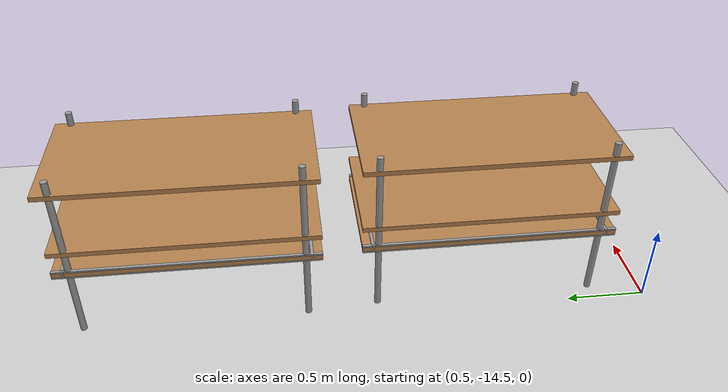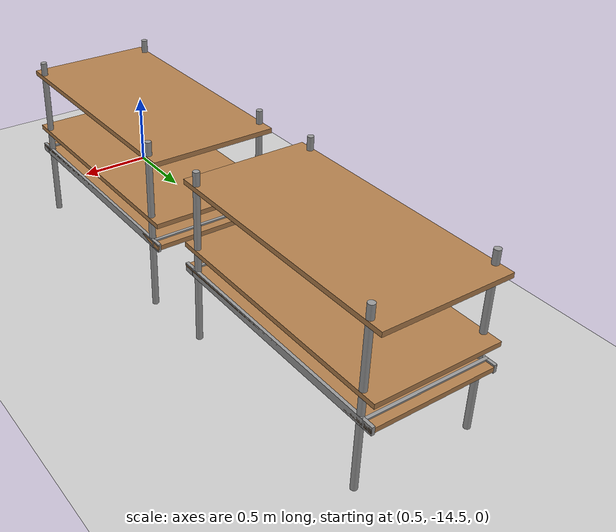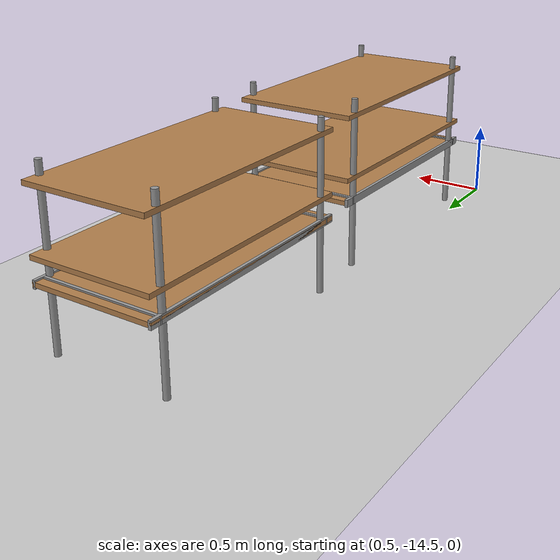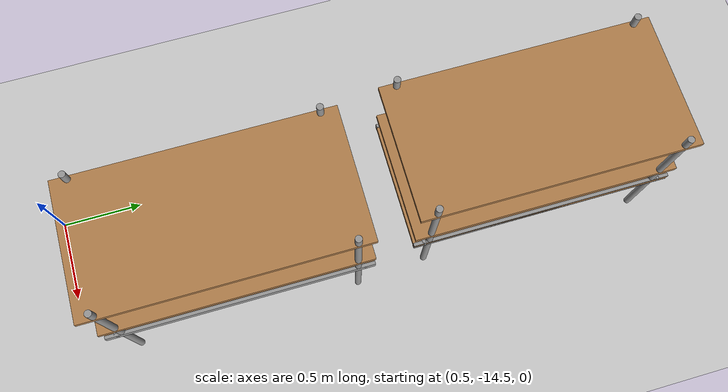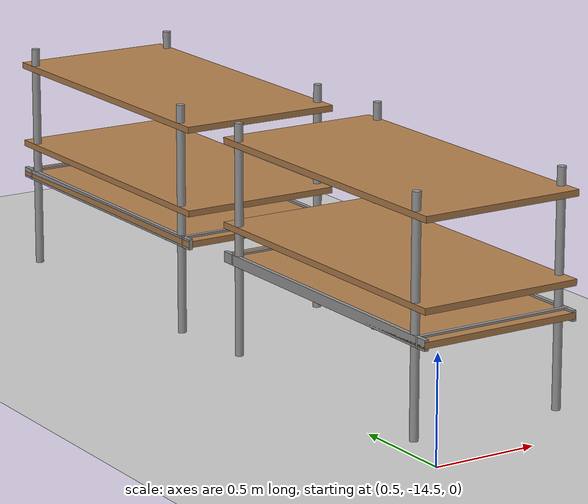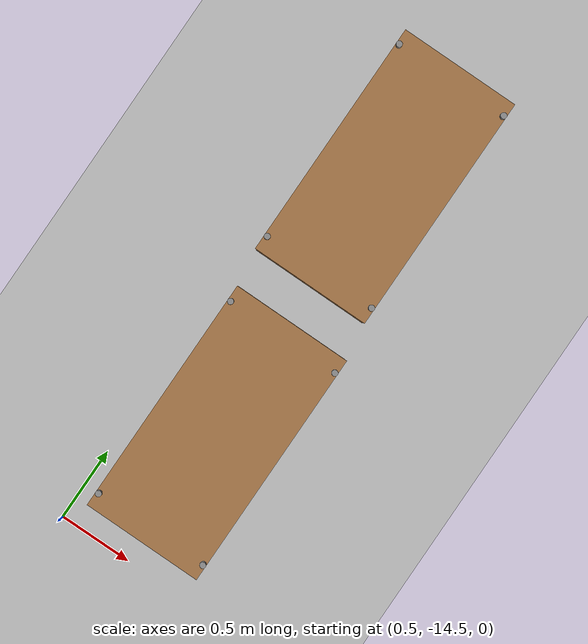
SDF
<sdf version="1.7">
 <world name="default">
  <model name="ground_plane">
   <static>1</static>
   <link name="link">
    <collision name="collision">
     <geometry><plane><normal>0 0 1</normal><size>100 100</size></plane></geometry>
     <surface>
      <contact><collide_bitmask>65535</collide_bitmask></contact>
      <friction><ode><mu>100</mu><mu2>50</mu2></ode></friction>
     </surface>
    </collision>
    <visual name="visual">
     <cast_shadows>0</cast_shadows>
     <geometry><plane><normal>0 0 1</normal><size>100 100</size></plane></geometry>
     <material>
      <script><uri>file://media/materials/scripts/gazebo.material</uri><name>Gazebo/Grey</name></script>
     </material>
    </visual>
   </link>
  </model>
  <model name="pallet_set0_clone_1_0">
   <link name="warehouse_pallet::warehouse_pallet::link">
    <pose>0 0 0 0 -0 1.57</pose>
    <inertial>
     <inertia>
      <ixx>0.0267042</ixx>
      <ixy>0</ixy>
      <ixz>0</ixz>
      <iyy>0.0937875</iyy>
      <iyz>0</iyz>
      <izz>0.120417</izz>
     </inertia>
     <mass>0.1</mass>
    </inertial>
    <visual name="back_right_leg">
     <pose>-0.7 -0.38 0.5 0 -0 0</pose>
     <geometry><cylinder><radius>0.02</radius><length>1.2</length></cylinder></geometry>
     <material>
      <script><uri>file://media/materials/scripts/gazebo.material</uri><name>Gazebo/Grey</name></script>
      <shader type="pixel"><normal_map>__default__</normal_map></shader>
      <ambient>0.3 0.3 0.3 1</ambient>
      <diffuse>0.7 0.7 0.7 1</diffuse>
      <specular>0.01 0.01 0.01 1</specular>
      <emissive>0 0 0 1</emissive>
     </material>
    </visual>
    <visual name="front_right_leg">
     <pose>0.7 -0.38 0.5 0 -0 0</pose>
     <geometry><cylinder><radius>0.02</radius><length>1.2</length></cylinder></geometry>
     <material>
      <script><uri>file://media/materials/scripts/gazebo.material</uri><name>Gazebo/Grey</name></script>
      <shader type="pixel"><normal_map>__default__</normal_map></shader>
      <ambient>0.3 0.3 0.3 1</ambient>
      <diffuse>0.7 0.7 0.7 1</diffuse>
      <specular>0.01 0.01 0.01 1</specular>
      <emissive>0 0 0 1</emissive>
     </material>
    </visual>
    <visual name="holding1_visual">
     <pose>0 0.39 0.45 0 -0 0</pose>
     <geometry><box><size>1.6 0.02 0.05</size></box></geometry>
     <material>
      <script><uri>file://media/materials/scripts/gazebo.material</uri><name>Gazebo/Grey</name></script>
      <shader type="pixel"><normal_map>__default__</normal_map></shader>
      <ambient>0.3 0.3 0.3 1</ambient>
      <diffuse>0.7 0.7 0.7 1</diffuse>
      <specular>0.01 0.01 0.01 1</specular>
      <emissive>0 0 0 1</emissive>
     </material>
    </visual>
    <visual name="front_left_leg">
     <pose>0.7 0.38 0.5 0 -0 0</pose>
     <geometry><cylinder><radius>0.02</radius><length>1.2</length></cylinder></geometry>
     <material>
      <script><uri>file://media/materials/scripts/gazebo.material</uri><name>Gazebo/Grey</name></script>
      <shader type="pixel"><normal_map>__default__</normal_map></shader>
      <ambient>0.3 0.3 0.3 1</ambient>
      <diffuse>0.7 0.7 0.7 1</diffuse>
      <specular>0.01 0.01 0.01 1</specular>
      <emissive>0 0 0 1</emissive>
     </material>
    </visual>
    <visual name="back_left_leg">
     <pose>-0.7 0.38 0.5 0 -0 0</pose>
     <geometry><cylinder><radius>0.02</radius><length>1.2</length></cylinder></geometry>
     <material>
      <script><uri>file://media/materials/scripts/gazebo.material</uri><name>Gazebo/Grey</name></script>
      <shader type="pixel"><normal_map>__default__</normal_map></shader>
      <ambient>0.3 0.3 0.3 1</ambient>
      <diffuse>0.7 0.7 0.7 1</diffuse>
      <specular>0.01 0.01 0.01 1</specular>
      <emissive>0 0 0 1</emissive>
     </material>
    </visual>
    <visual name="visual1">
     <pose>0 0 0.45 0 -0 0</pose>
     <geometry><box><size>1.6 0.8 0.03</size></box></geometry>
     <material>
      <script><uri>file://media/materials/scripts/gazebo.material</uri><name>Gazebo/Wood</name></script>
      <shader type="pixel"><normal_map>__default__</normal_map></shader>
      <ambient>1 1 1 1</ambient>
      <diffuse>1 1 1 1</diffuse>
      <specular>0.2 0.2 0.2 1</specular>
      <emissive>0 0 0 1</emissive>
     </material>
    </visual>
    <visual name="holding2_visual">
     <pose>0 -0.39 0.45 0 -0 0</pose>
     <geometry><box><size>1.6 0.02 0.05</size></box></geometry>
     <material>
      <script><uri>file://media/materials/scripts/gazebo.material</uri><name>Gazebo/Grey</name></script>
      <shader type="pixel"><normal_map>__default__</normal_map></shader>
      <ambient>0.3 0.3 0.3 1</ambient>
      <diffuse>0.7 0.7 0.7 1</diffuse>
      <specular>0.01 0.01 0.01 1</specular>
      <emissive>0 0 0 1</emissive>
     </material>
    </visual>
    <visual name="holding3_visual">
     <pose>0.735 0 0.45 0 -0 1.57</pose>
     <geometry><box><size>0.8 0.02 0.05</size></box></geometry>
     <material>
      <script><uri>file://media/materials/scripts/gazebo.material</uri><name>Gazebo/Grey</name></script>
      <shader type="pixel"><normal_map>__default__</normal_map></shader>
      <ambient>0.3 0.3 0.3 1</ambient>
      <diffuse>0.7 0.7 0.7 1</diffuse>
      <specular>0.01 0.01 0.01 1</specular>
      <emissive>0 0 0 1</emissive>
     </material>
    </visual>
    <visual name="holding4_visual">
     <pose>-0.735 0 0.45 0 -0 1.57</pose>
     <geometry><box><size>0.8 0.02 0.05</size></box></geometry>
     <material>
      <script><uri>file://media/materials/scripts/gazebo.material</uri><name>Gazebo/Grey</name></script>
      <shader type="pixel"><normal_map>__default__</normal_map></shader>
      <ambient>0.3 0.3 0.3 1</ambient>
      <diffuse>0.7 0.7 0.7 1</diffuse>
      <specular>0.01 0.01 0.01 1</specular>
      <emissive>0 0 0 1</emissive>
     </material>
    </visual>
    <visual name="visual2">
     <pose>0 0 0.6 0 -0 0</pose>
     <geometry><box><size>1.6 0.8 0.03</size></box></geometry>
     <material>
      <script><uri>file://media/materials/scripts/gazebo.material</uri><name>Gazebo/Wood</name></script>
      <shader type="pixel"><normal_map>__default__</normal_map></shader>
      <ambient>1 1 1 1</ambient>
      <diffuse>1 1 1 1</diffuse>
      <specular>0.2 0.2 0.2 1</specular>
      <emissive>0 0 0 1</emissive>
     </material>
    </visual>
    <visual name="visual3">
     <pose>0 0 1 0 -0 0</pose>
     <geometry><box><size>1.6 0.8 0.03</size></box></geometry>
     <material>
      <script><uri>file://media/materials/scripts/gazebo.material</uri><name>Gazebo/Wood</name></script>
      <shader type="pixel"><normal_map>__default__</normal_map></shader>
      <ambient>1 1 1 1</ambient>
      <diffuse>1 1 1 1</diffuse>
      <specular>0.2 0.2 0.2 1</specular>
      <emissive>0 0 0 1</emissive>
     </material>
    </visual>
    <collision name="surface1">
     <pose>0 0 0.45 0 -0 0</pose>
     <geometry><box><size>1.6 0.8 0.03</size></box></geometry>
     <surface>
      <friction>
       <ode><mu>20</mu><mu2>20</mu2><fdir1>0 0 0</fdir1><slip1>0</slip1><slip2>0</slip2></ode>
       <torsional>
        <coefficient>1</coefficient>
        <patch_radius>0</patch_radius>
        <surface_radius>0</surface_radius>
        <use_patch_radius>1</use_patch_radius>
        <ode><slip>0</slip></ode>
       </torsional>
      </friction>
      <bounce><restitution_coefficient>0</restitution_coefficient><threshold>1e+06</threshold></bounce>
      <contact>
       <collide_without_contact>0</collide_without_contact>
       <collide_without_contact_bitmask>1</collide_without_contact_bitmask>
       <collide_bitmask>1</collide_bitmask>
       <ode>
        <soft_cfm>0</soft_cfm>
        <soft_erp>0.2</soft_erp>
        <kp>1e+13</kp>
        <kd>1</kd>
        <max_vel>0.01</max_vel>
        <min_depth>0</min_depth>
       </ode>
       <bullet>
        <split_impulse>1</split_impulse>
        <split_impulse_penetration_threshold>-0.01</split_impulse_penetration_threshold>
        <soft_cfm>0</soft_cfm>
        <soft_erp>0.2</soft_erp>
        <kp>1e+13</kp>
        <kd>1</kd>
       </bullet>
      </contact>
     </surface>
    </collision>
    <collision name="holding1_collision">
     <pose>0 0.39 0.45 0 -0 0</pose>
     <geometry><box><size>1.6 0.02 0.05</size></box></geometry>
     <surface>
      <friction>
       <ode><mu>1e+09</mu><mu2>1e+09</mu2><fdir1>0 0 0</fdir1><slip1>0</slip1><slip2>0</slip2></ode>
       <torsional>
        <coefficient>1</coefficient>
        <patch_radius>0</patch_radius>
        <surface_radius>0</surface_radius>
        <use_patch_radius>1</use_patch_radius>
        <ode><slip>0</slip></ode>
       </torsional>
      </friction>
      <bounce><restitution_coefficient>0</restitution_coefficient><threshold>1e+06</threshold></bounce>
      <contact>
       <collide_without_contact>0</collide_without_contact>
       <collide_without_contact_bitmask>1</collide_without_contact_bitmask>
       <collide_bitmask>1</collide_bitmask>
       <ode>
        <soft_cfm>0</soft_cfm>
        <soft_erp>0.2</soft_erp>
        <kp>1e+13</kp>
        <kd>1</kd>
        <max_vel>0.01</max_vel>
        <min_depth>0</min_depth>
       </ode>
       <bullet>
        <split_impulse>1</split_impulse>
        <split_impulse_penetration_threshold>-0.01</split_impulse_penetration_threshold>
        <soft_cfm>0</soft_cfm>
        <soft_erp>0.2</soft_erp>
        <kp>1e+13</kp>
        <kd>1</kd>
       </bullet>
      </contact>
     </surface>
    </collision>
    <collision name="holding2_collision">
     <pose>0 -0.39 0.45 0 -0 0</pose>
     <geometry><box><size>1.6 0.02 0.05</size></box></geometry>
     <surface>
      <friction>
       <ode><mu>1e+09</mu><mu2>1e+09</mu2><fdir1>0 0 0</fdir1><slip1>0</slip1><slip2>0</slip2></ode>
       <torsional>
        <coefficient>1</coefficient>
        <patch_radius>0</patch_radius>
        <surface_radius>0</surface_radius>
        <use_patch_radius>1</use_patch_radius>
        <ode><slip>0</slip></ode>
       </torsional>
      </friction>
      <bounce><restitution_coefficient>0</restitution_coefficient><threshold>1e+06</threshold></bounce>
      <contact>
       <collide_without_contact>0</collide_without_contact>
       <collide_without_contact_bitmask>1</collide_without_contact_bitmask>
       <collide_bitmask>1</collide_bitmask>
       <ode>
        <soft_cfm>0</soft_cfm>
        <soft_erp>0.2</soft_erp>
        <kp>1e+13</kp>
        <kd>1</kd>
        <max_vel>0.01</max_vel>
        <min_depth>0</min_depth>
       </ode>
       <bullet>
        <split_impulse>1</split_impulse>
        <split_impulse_penetration_threshold>-0.01</split_impulse_penetration_threshold>
        <soft_cfm>0</soft_cfm>
        <soft_erp>0.2</soft_erp>
        <kp>1e+13</kp>
        <kd>1</kd>
       </bullet>
      </contact>
     </surface>
    </collision>
    <collision name="holding3_collision">
     <pose>0.735 0 0.45 0 -0 1.57</pose>
     <geometry><box><size>0.8 0.02 0.05</size></box></geometry>
     <surface>
      <friction>
       <ode><mu>1e+09</mu><mu2>1e+09</mu2><fdir1>0 0 0</fdir1><slip1>0</slip1><slip2>0</slip2></ode>
       <torsional>
        <coefficient>1</coefficient>
        <patch_radius>0</patch_radius>
        <surface_radius>0</surface_radius>
        <use_patch_radius>1</use_patch_radius>
        <ode><slip>0</slip></ode>
       </torsional>
      </friction>
      <bounce><restitution_coefficient>0</restitution_coefficient><threshold>1e+06</threshold></bounce>
      <contact>
       <collide_without_contact>0</collide_without_contact>
       <collide_without_contact_bitmask>1</collide_without_contact_bitmask>
       <collide_bitmask>1</collide_bitmask>
       <ode>
        <soft_cfm>0</soft_cfm>
        <soft_erp>0.2</soft_erp>
        <kp>1e+13</kp>
        <kd>1</kd>
        <max_vel>0.01</max_vel>
        <min_depth>0</min_depth>
       </ode>
       <bullet>
        <split_impulse>1</split_impulse>
        <split_impulse_penetration_threshold>-0.01</split_impulse_penetration_threshold>
        <soft_cfm>0</soft_cfm>
        <soft_erp>0.2</soft_erp>
        <kp>1e+13</kp>
        <kd>1</kd>
       </bullet>
      </contact>
     </surface>
    </collision>
    <collision name="surface3">
     <pose>0 0 1 0 -0 0</pose>
     <geometry><box><size>1.6 0.8 0.03</size></box></geometry>
     <surface>
      <friction>
       <ode><mu>2.5</mu><mu2>2.5</mu2><fdir1>0 0 0</fdir1><slip1>0</slip1><slip2>0</slip2></ode>
       <torsional>
        <coefficient>1</coefficient>
        <patch_radius>0</patch_radius>
        <surface_radius>0</surface_radius>
        <use_patch_radius>1</use_patch_radius>
        <ode><slip>0</slip></ode>
       </torsional>
      </friction>
      <bounce><restitution_coefficient>0</restitution_coefficient><threshold>1e+06</threshold></bounce>
      <contact>
       <collide_without_contact>0</collide_without_contact>
       <collide_without_contact_bitmask>1</collide_without_contact_bitmask>
       <collide_bitmask>1</collide_bitmask>
       <ode>
        <soft_cfm>0</soft_cfm>
        <soft_erp>0.2</soft_erp>
        <kp>1e+13</kp>
        <kd>1</kd>
        <max_vel>0.01</max_vel>
        <min_depth>0</min_depth>
       </ode>
       <bullet>
        <split_impulse>1</split_impulse>
        <split_impulse_penetration_threshold>-0.01</split_impulse_penetration_threshold>
        <soft_cfm>0</soft_cfm>
        <soft_erp>0.2</soft_erp>
        <kp>1e+13</kp>
        <kd>1</kd>
       </bullet>
      </contact>
     </surface>
    </collision>
    <collision name="holding4_collision">
     <pose>-0.735 0 0.45 0 -0 1.57</pose>
     <geometry><box><size>0.8 0.02 0.05</size></box></geometry>
     <surface>
      <friction>
       <ode><mu>1e+09</mu><mu2>1e+09</mu2><fdir1>0 0 0</fdir1><slip1>0</slip1><slip2>0</slip2></ode>
       <torsional>
        <coefficient>1</coefficient>
        <patch_radius>0</patch_radius>
        <surface_radius>0</surface_radius>
        <use_patch_radius>1</use_patch_radius>
        <ode><slip>0</slip></ode>
       </torsional>
      </friction>
      <bounce><restitution_coefficient>0</restitution_coefficient><threshold>1e+06</threshold></bounce>
      <contact>
       <collide_without_contact>0</collide_without_contact>
       <collide_without_contact_bitmask>1</collide_without_contact_bitmask>
       <collide_bitmask>1</collide_bitmask>
       <ode>
        <soft_cfm>0</soft_cfm>
        <soft_erp>0.2</soft_erp>
        <kp>1e+13</kp>
        <kd>1</kd>
        <max_vel>0.01</max_vel>
        <min_depth>0</min_depth>
       </ode>
       <bullet>
        <split_impulse>1</split_impulse>
        <split_impulse_penetration_threshold>-0.01</split_impulse_penetration_threshold>
        <soft_cfm>0</soft_cfm>
        <soft_erp>0.2</soft_erp>
        <kp>1e+13</kp>
        <kd>1</kd>
       </bullet>
      </contact>
     </surface>
    </collision>
    <collision name="surface2">
     <pose>0 0 0.6 0 -0 0</pose>
     <geometry><box><size>1.6 0.8 0.03</size></box></geometry>
     <surface>
      <friction>
       <ode><mu>2.5</mu><mu2>2.5</mu2><fdir1>0 0 0</fdir1><slip1>0</slip1><slip2>0</slip2></ode>
       <torsional>
        <coefficient>1</coefficient>
        <patch_radius>0</patch_radius>
        <surface_radius>0</surface_radius>
        <use_patch_radius>1</use_patch_radius>
        <ode><slip>0</slip></ode>
       </torsional>
      </friction>
      <bounce><restitution_coefficient>0</restitution_coefficient><threshold>1e+06</threshold></bounce>
      <contact>
       <collide_without_contact>0</collide_without_contact>
       <collide_without_contact_bitmask>1</collide_without_contact_bitmask>
       <collide_bitmask>1</collide_bitmask>
       <ode>
        <soft_cfm>0</soft_cfm>
        <soft_erp>0.2</soft_erp>
        <kp>1e+13</kp>
        <kd>1</kd>
        <max_vel>0.01</max_vel>
        <min_depth>0</min_depth>
       </ode>
       <bullet>
        <split_impulse>1</split_impulse>
        <split_impulse_penetration_threshold>-0.01</split_impulse_penetration_threshold>
        <soft_cfm>0</soft_cfm>
        <soft_erp>0.2</soft_erp>
        <kp>1e+13</kp>
        <kd>1</kd>
       </bullet>
      </contact>
     </surface>
    </collision>
    <collision name="front_right_leg">
     <pose>0.7 -0.38 0.5 0 -0 0</pose>
     <geometry><cylinder><radius>0.02</radius><length>1</length></cylinder></geometry>
     <surface>
      <friction>
       <ode><mu>0.1</mu><mu2>0.1</mu2><fdir1>0 0 0</fdir1><slip1>0</slip1><slip2>0</slip2></ode>
       <torsional>
        <coefficient>1</coefficient>
        <patch_radius>0</patch_radius>
        <surface_radius>0</surface_radius>
        <use_patch_radius>1</use_patch_radius>
        <ode><slip>0</slip></ode>
       </torsional>
      </friction>
      <bounce><restitution_coefficient>0</restitution_coefficient><threshold>1e+06</threshold></bounce>
      <contact>
       <collide_without_contact>0</collide_without_contact>
       <collide_without_contact_bitmask>1</collide_without_contact_bitmask>
       <collide_bitmask>1</collide_bitmask>
       <ode>
        <soft_cfm>0</soft_cfm>
        <soft_erp>0.2</soft_erp>
        <kp>1e+13</kp>
        <kd>1</kd>
        <max_vel>0.01</max_vel>
        <min_depth>0</min_depth>
       </ode>
       <bullet>
        <split_impulse>1</split_impulse>
        <split_impulse_penetration_threshold>-0.01</split_impulse_penetration_threshold>
        <soft_cfm>0</soft_cfm>
        <soft_erp>0.2</soft_erp>
        <kp>1e+13</kp>
        <kd>1</kd>
       </bullet>
      </contact>
     </surface>
    </collision>
    <collision name="back_right_leg">
     <pose>-0.7 -0.38 0.5 0 -0 0</pose>
     <geometry><cylinder><radius>0.02</radius><length>1.2</length></cylinder></geometry>
     <surface>
      <friction>
       <ode><mu>0.1</mu><mu2>0.1</mu2><fdir1>0 0 0</fdir1><slip1>0</slip1><slip2>0</slip2></ode>
       <torsional>
        <coefficient>1</coefficient>
        <patch_radius>0</patch_radius>
        <surface_radius>0</surface_radius>
        <use_patch_radius>1</use_patch_radius>
        <ode><slip>0</slip></ode>
       </torsional>
      </friction>
      <bounce><restitution_coefficient>0</restitution_coefficient><threshold>1e+06</threshold></bounce>
      <contact>
       <collide_without_contact>0</collide_without_contact>
       <collide_without_contact_bitmask>1</collide_without_contact_bitmask>
       <collide_bitmask>1</collide_bitmask>
       <ode>
        <soft_cfm>0</soft_cfm>
        <soft_erp>0.2</soft_erp>
        <kp>1e+13</kp>
        <kd>1</kd>
        <max_vel>0.01</max_vel>
        <min_depth>0</min_depth>
       </ode>
       <bullet>
        <split_impulse>1</split_impulse>
        <split_impulse_penetration_threshold>-0.01</split_impulse_penetration_threshold>
        <soft_cfm>0</soft_cfm>
        <soft_erp>0.2</soft_erp>
        <kp>1e+13</kp>
        <kd>1</kd>
       </bullet>
      </contact>
     </surface>
    </collision>
    <collision name="front_left_leg">
     <pose>0.7 0.38 0.5 0 -0 0</pose>
     <geometry><cylinder><radius>0.02</radius><length>1.2</length></cylinder></geometry>
     <surface>
      <friction>
       <ode><mu>0.1</mu><mu2>0.1</mu2><fdir1>0 0 0</fdir1><slip1>0</slip1><slip2>0</slip2></ode>
       <torsional>
        <coefficient>1</coefficient>
        <patch_radius>0</patch_radius>
        <surface_radius>0</surface_radius>
        <use_patch_radius>1</use_patch_radius>
        <ode><slip>0</slip></ode>
       </torsional>
      </friction>
      <bounce><restitution_coefficient>0</restitution_coefficient><threshold>1e+06</threshold></bounce>
      <contact>
       <collide_without_contact>0</collide_without_contact>
       <collide_without_contact_bitmask>1</collide_without_contact_bitmask>
       <collide_bitmask>1</collide_bitmask>
       <ode>
        <soft_cfm>0</soft_cfm>
        <soft_erp>0.2</soft_erp>
        <kp>1e+13</kp>
        <kd>1</kd>
        <max_vel>0.01</max_vel>
        <min_depth>0</min_depth>
       </ode>
       <bullet>
        <split_impulse>1</split_impulse>
        <split_impulse_penetration_threshold>-0.01</split_impulse_penetration_threshold>
        <soft_cfm>0</soft_cfm>
        <soft_erp>0.2</soft_erp>
        <kp>1e+13</kp>
        <kd>1</kd>
       </bullet>
      </contact>
     </surface>
    </collision>
    <collision name="back_left_leg">
     <pose>-0.7 0.38 0.5 0 -0 0</pose>
     <geometry><cylinder><radius>0.02</radius><length>1.2</length></cylinder></geometry>
     <surface>
      <friction>
       <ode><mu>0.1</mu><mu2>0.1</mu2><fdir1>0 0 0</fdir1><slip1>0</slip1><slip2>0</slip2></ode>
       <torsional>
        <coefficient>1</coefficient>
        <patch_radius>0</patch_radius>
        <surface_radius>0</surface_radius>
        <use_patch_radius>1</use_patch_radius>
        <ode><slip>0</slip></ode>
       </torsional>
      </friction>
      <bounce><restitution_coefficient>0</restitution_coefficient><threshold>1e+06</threshold></bounce>
      <contact>
       <collide_without_contact>0</collide_without_contact>
       <collide_without_contact_bitmask>1</collide_without_contact_bitmask>
       <collide_bitmask>1</collide_bitmask>
       <ode>
        <soft_cfm>0</soft_cfm>
        <soft_erp>0.2</soft_erp>
        <kp>1e+13</kp>
        <kd>1</kd>
        <max_vel>0.01</max_vel>
        <min_depth>0</min_depth>
       </ode>
       <bullet>
        <split_impulse>1</split_impulse>
        <split_impulse_penetration_threshold>-0.01</split_impulse_penetration_threshold>
        <soft_cfm>0</soft_cfm>
        <soft_erp>0.2</soft_erp>
        <kp>1e+13</kp>
        <kd>1</kd>
       </bullet>
      </contact>
     </surface>
    </collision>
   </link>
   <static>1</static>
   <pose>0.998437 -13.469 0 0 -0 0</pose>
  </model>
  <model name="pallet_set0_clone_1_1">
   <link name="warehouse_pallet::warehouse_pallet::link">
    <pose>0 0 0 0 -0 1.57</pose>
    <inertial>
     <inertia>
      <ixx>0.0267042</ixx>
      <ixy>0</ixy>
      <ixz>0</ixz>
      <iyy>0.0937875</iyy>
      <iyz>0</iyz>
      <izz>0.120417</izz>
     </inertia>
     <mass>0.1</mass>
    </inertial>
    <visual name="back_right_leg">
     <pose>-0.7 -0.38 0.5 0 -0 0</pose>
     <geometry><cylinder><radius>0.02</radius><length>1.2</length></cylinder></geometry>
     <material>
      <script><uri>file://media/materials/scripts/gazebo.material</uri><name>Gazebo/Grey</name></script>
      <shader type="pixel"><normal_map>__default__</normal_map></shader>
      <ambient>0.3 0.3 0.3 1</ambient>
      <diffuse>0.7 0.7 0.7 1</diffuse>
      <specular>0.01 0.01 0.01 1</specular>
      <emissive>0 0 0 1</emissive>
     </material>
    </visual>
    <visual name="front_right_leg">
     <pose>0.7 -0.38 0.5 0 -0 0</pose>
     <geometry><cylinder><radius>0.02</radius><length>1.2</length></cylinder></geometry>
     <material>
      <script><uri>file://media/materials/scripts/gazebo.material</uri><name>Gazebo/Grey</name></script>
      <shader type="pixel"><normal_map>__default__</normal_map></shader>
      <ambient>0.3 0.3 0.3 1</ambient>
      <diffuse>0.7 0.7 0.7 1</diffuse>
      <specular>0.01 0.01 0.01 1</specular>
      <emissive>0 0 0 1</emissive>
     </material>
    </visual>
    <visual name="holding1_visual">
     <pose>0 0.39 0.45 0 -0 0</pose>
     <geometry><box><size>1.6 0.02 0.05</size></box></geometry>
     <material>
      <script><uri>file://media/materials/scripts/gazebo.material</uri><name>Gazebo/Grey</name></script>
      <shader type="pixel"><normal_map>__default__</normal_map></shader>
      <ambient>0.3 0.3 0.3 1</ambient>
      <diffuse>0.7 0.7 0.7 1</diffuse>
      <specular>0.01 0.01 0.01 1</specular>
      <emissive>0 0 0 1</emissive>
     </material>
    </visual>
    <visual name="front_left_leg">
     <pose>0.7 0.38 0.5 0 -0 0</pose>
     <geometry><cylinder><radius>0.02</radius><length>1.2</length></cylinder></geometry>
     <material>
      <script><uri>file://media/materials/scripts/gazebo.material</uri><name>Gazebo/Grey</name></script>
      <shader type="pixel"><normal_map>__default__</normal_map></shader>
      <ambient>0.3 0.3 0.3 1</ambient>
      <diffuse>0.7 0.7 0.7 1</diffuse>
      <specular>0.01 0.01 0.01 1</specular>
      <emissive>0 0 0 1</emissive>
     </material>
    </visual>
    <visual name="back_left_leg">
     <pose>-0.7 0.38 0.5 0 -0 0</pose>
     <geometry><cylinder><radius>0.02</radius><length>1.2</length></cylinder></geometry>
     <material>
      <script><uri>file://media/materials/scripts/gazebo.material</uri><name>Gazebo/Grey</name></script>
      <shader type="pixel"><normal_map>__default__</normal_map></shader>
      <ambient>0.3 0.3 0.3 1</ambient>
      <diffuse>0.7 0.7 0.7 1</diffuse>
      <specular>0.01 0.01 0.01 1</specular>
      <emissive>0 0 0 1</emissive>
     </material>
    </visual>
    <visual name="visual1">
     <pose>0 0 0.45 0 -0 0</pose>
     <geometry><box><size>1.6 0.8 0.03</size></box></geometry>
     <material>
      <script><uri>file://media/materials/scripts/gazebo.material</uri><name>Gazebo/Wood</name></script>
      <shader type="pixel"><normal_map>__default__</normal_map></shader>
      <ambient>1 1 1 1</ambient>
      <diffuse>1 1 1 1</diffuse>
      <specular>0.2 0.2 0.2 1</specular>
      <emissive>0 0 0 1</emissive>
     </material>
    </visual>
    <visual name="holding2_visual">
     <pose>0 -0.39 0.45 0 -0 0</pose>
     <geometry><box><size>1.6 0.02 0.05</size></box></geometry>
     <material>
      <script><uri>file://media/materials/scripts/gazebo.material</uri><name>Gazebo/Grey</name></script>
      <shader type="pixel"><normal_map>__default__</normal_map></shader>
      <ambient>0.3 0.3 0.3 1</ambient>
      <diffuse>0.7 0.7 0.7 1</diffuse>
      <specular>0.01 0.01 0.01 1</specular>
      <emissive>0 0 0 1</emissive>
     </material>
    </visual>
    <visual name="holding3_visual">
     <pose>0.735 0 0.45 0 -0 1.57</pose>
     <geometry><box><size>0.8 0.02 0.05</size></box></geometry>
     <material>
      <script><uri>file://media/materials/scripts/gazebo.material</uri><name>Gazebo/Grey</name></script>
      <shader type="pixel"><normal_map>__default__</normal_map></shader>
      <ambient>0.3 0.3 0.3 1</ambient>
      <diffuse>0.7 0.7 0.7 1</diffuse>
      <specular>0.01 0.01 0.01 1</specular>
      <emissive>0 0 0 1</emissive>
     </material>
    </visual>
    <visual name="holding4_visual">
     <pose>-0.735 0 0.45 0 -0 1.57</pose>
     <geometry><box><size>0.8 0.02 0.05</size></box></geometry>
     <material>
      <script><uri>file://media/materials/scripts/gazebo.material</uri><name>Gazebo/Grey</name></script>
      <shader type="pixel"><normal_map>__default__</normal_map></shader>
      <ambient>0.3 0.3 0.3 1</ambient>
      <diffuse>0.7 0.7 0.7 1</diffuse>
      <specular>0.01 0.01 0.01 1</specular>
      <emissive>0 0 0 1</emissive>
     </material>
    </visual>
    <visual name="visual2">
     <pose>0 0 0.6 0 -0 0</pose>
     <geometry><box><size>1.6 0.8 0.03</size></box></geometry>
     <material>
      <script><uri>file://media/materials/scripts/gazebo.material</uri><name>Gazebo/Wood</name></script>
      <shader type="pixel"><normal_map>__default__</normal_map></shader>
      <ambient>1 1 1 1</ambient>
      <diffuse>1 1 1 1</diffuse>
      <specular>0.2 0.2 0.2 1</specular>
      <emissive>0 0 0 1</emissive>
     </material>
    </visual>
    <visual name="visual3">
     <pose>0 0 1 0 -0 0</pose>
     <geometry><box><size>1.6 0.8 0.03</size></box></geometry>
     <material>
      <script><uri>file://media/materials/scripts/gazebo.material</uri><name>Gazebo/Wood</name></script>
      <shader type="pixel"><normal_map>__default__</normal_map></shader>
      <ambient>1 1 1 1</ambient>
      <diffuse>1 1 1 1</diffuse>
      <specular>0.2 0.2 0.2 1</specular>
      <emissive>0 0 0 1</emissive>
     </material>
    </visual>
    <collision name="surface1">
     <pose>0 0 0.45 0 -0 0</pose>
     <geometry><box><size>1.6 0.8 0.03</size></box></geometry>
     <surface>
      <friction>
       <ode><mu>20</mu><mu2>20</mu2><fdir1>0 0 0</fdir1><slip1>0</slip1><slip2>0</slip2></ode>
       <torsional>
        <coefficient>1</coefficient>
        <patch_radius>0</patch_radius>
        <surface_radius>0</surface_radius>
        <use_patch_radius>1</use_patch_radius>
        <ode><slip>0</slip></ode>
       </torsional>
      </friction>
      <bounce><restitution_coefficient>0</restitution_coefficient><threshold>1e+06</threshold></bounce>
      <contact>
       <collide_without_contact>0</collide_without_contact>
       <collide_without_contact_bitmask>1</collide_without_contact_bitmask>
       <collide_bitmask>1</collide_bitmask>
       <ode>
        <soft_cfm>0</soft_cfm>
        <soft_erp>0.2</soft_erp>
        <kp>1e+13</kp>
        <kd>1</kd>
        <max_vel>0.01</max_vel>
        <min_depth>0</min_depth>
       </ode>
       <bullet>
        <split_impulse>1</split_impulse>
        <split_impulse_penetration_threshold>-0.01</split_impulse_penetration_threshold>
        <soft_cfm>0</soft_cfm>
        <soft_erp>0.2</soft_erp>
        <kp>1e+13</kp>
        <kd>1</kd>
       </bullet>
      </contact>
     </surface>
    </collision>
    <collision name="holding1_collision">
     <pose>0 0.39 0.45 0 -0 0</pose>
     <geometry><box><size>1.6 0.02 0.05</size></box></geometry>
     <surface>
      <friction>
       <ode><mu>1e+09</mu><mu2>1e+09</mu2><fdir1>0 0 0</fdir1><slip1>0</slip1><slip2>0</slip2></ode>
       <torsional>
        <coefficient>1</coefficient>
        <patch_radius>0</patch_radius>
        <surface_radius>0</surface_radius>
        <use_patch_radius>1</use_patch_radius>
        <ode><slip>0</slip></ode>
       </torsional>
      </friction>
      <bounce><restitution_coefficient>0</restitution_coefficient><threshold>1e+06</threshold></bounce>
      <contact>
       <collide_without_contact>0</collide_without_contact>
       <collide_without_contact_bitmask>1</collide_without_contact_bitmask>
       <collide_bitmask>1</collide_bitmask>
       <ode>
        <soft_cfm>0</soft_cfm>
        <soft_erp>0.2</soft_erp>
        <kp>1e+13</kp>
        <kd>1</kd>
        <max_vel>0.01</max_vel>
        <min_depth>0</min_depth>
       </ode>
       <bullet>
        <split_impulse>1</split_impulse>
        <split_impulse_penetration_threshold>-0.01</split_impulse_penetration_threshold>
        <soft_cfm>0</soft_cfm>
        <soft_erp>0.2</soft_erp>
        <kp>1e+13</kp>
        <kd>1</kd>
       </bullet>
      </contact>
     </surface>
    </collision>
    <collision name="holding2_collision">
     <pose>0 -0.39 0.45 0 -0 0</pose>
     <geometry><box><size>1.6 0.02 0.05</size></box></geometry>
     <surface>
      <friction>
       <ode><mu>1e+09</mu><mu2>1e+09</mu2><fdir1>0 0 0</fdir1><slip1>0</slip1><slip2>0</slip2></ode>
       <torsional>
        <coefficient>1</coefficient>
        <patch_radius>0</patch_radius>
        <surface_radius>0</surface_radius>
        <use_patch_radius>1</use_patch_radius>
        <ode><slip>0</slip></ode>
       </torsional>
      </friction>
      <bounce><restitution_coefficient>0</restitution_coefficient><threshold>1e+06</threshold></bounce>
      <contact>
       <collide_without_contact>0</collide_without_contact>
       <collide_without_contact_bitmask>1</collide_without_contact_bitmask>
       <collide_bitmask>1</collide_bitmask>
       <ode>
        <soft_cfm>0</soft_cfm>
        <soft_erp>0.2</soft_erp>
        <kp>1e+13</kp>
        <kd>1</kd>
        <max_vel>0.01</max_vel>
        <min_depth>0</min_depth>
       </ode>
       <bullet>
        <split_impulse>1</split_impulse>
        <split_impulse_penetration_threshold>-0.01</split_impulse_penetration_threshold>
        <soft_cfm>0</soft_cfm>
        <soft_erp>0.2</soft_erp>
        <kp>1e+13</kp>
        <kd>1</kd>
       </bullet>
      </contact>
     </surface>
    </collision>
    <collision name="holding3_collision">
     <pose>0.735 0 0.45 0 -0 1.57</pose>
     <geometry><box><size>0.8 0.02 0.05</size></box></geometry>
     <surface>
      <friction>
       <ode><mu>1e+09</mu><mu2>1e+09</mu2><fdir1>0 0 0</fdir1><slip1>0</slip1><slip2>0</slip2></ode>
       <torsional>
        <coefficient>1</coefficient>
        <patch_radius>0</patch_radius>
        <surface_radius>0</surface_radius>
        <use_patch_radius>1</use_patch_radius>
        <ode><slip>0</slip></ode>
       </torsional>
      </friction>
      <bounce><restitution_coefficient>0</restitution_coefficient><threshold>1e+06</threshold></bounce>
      <contact>
       <collide_without_contact>0</collide_without_contact>
       <collide_without_contact_bitmask>1</collide_without_contact_bitmask>
       <collide_bitmask>1</collide_bitmask>
       <ode>
        <soft_cfm>0</soft_cfm>
        <soft_erp>0.2</soft_erp>
        <kp>1e+13</kp>
        <kd>1</kd>
        <max_vel>0.01</max_vel>
        <min_depth>0</min_depth>
       </ode>
       <bullet>
        <split_impulse>1</split_impulse>
        <split_impulse_penetration_threshold>-0.01</split_impulse_penetration_threshold>
        <soft_cfm>0</soft_cfm>
        <soft_erp>0.2</soft_erp>
        <kp>1e+13</kp>
        <kd>1</kd>
       </bullet>
      </contact>
     </surface>
    </collision>
    <collision name="surface3">
     <pose>0 0 1 0 -0 0</pose>
     <geometry><box><size>1.6 0.8 0.03</size></box></geometry>
     <surface>
      <friction>
       <ode><mu>2.5</mu><mu2>2.5</mu2><fdir1>0 0 0</fdir1><slip1>0</slip1><slip2>0</slip2></ode>
       <torsional>
        <coefficient>1</coefficient>
        <patch_radius>0</patch_radius>
        <surface_radius>0</surface_radius>
        <use_patch_radius>1</use_patch_radius>
        <ode><slip>0</slip></ode>
       </torsional>
      </friction>
      <bounce><restitution_coefficient>0</restitution_coefficient><threshold>1e+06</threshold></bounce>
      <contact>
       <collide_without_contact>0</collide_without_contact>
       <collide_without_contact_bitmask>1</collide_without_contact_bitmask>
       <collide_bitmask>1</collide_bitmask>
       <ode>
        <soft_cfm>0</soft_cfm>
        <soft_erp>0.2</soft_erp>
        <kp>1e+13</kp>
        <kd>1</kd>
        <max_vel>0.01</max_vel>
        <min_depth>0</min_depth>
       </ode>
       <bullet>
        <split_impulse>1</split_impulse>
        <split_impulse_penetration_threshold>-0.01</split_impulse_penetration_threshold>
        <soft_cfm>0</soft_cfm>
        <soft_erp>0.2</soft_erp>
        <kp>1e+13</kp>
        <kd>1</kd>
       </bullet>
      </contact>
     </surface>
    </collision>
    <collision name="holding4_collision">
     <pose>-0.735 0 0.45 0 -0 1.57</pose>
     <geometry><box><size>0.8 0.02 0.05</size></box></geometry>
     <surface>
      <friction>
       <ode><mu>1e+09</mu><mu2>1e+09</mu2><fdir1>0 0 0</fdir1><slip1>0</slip1><slip2>0</slip2></ode>
       <torsional>
        <coefficient>1</coefficient>
        <patch_radius>0</patch_radius>
        <surface_radius>0</surface_radius>
        <use_patch_radius>1</use_patch_radius>
        <ode><slip>0</slip></ode>
       </torsional>
      </friction>
      <bounce><restitution_coefficient>0</restitution_coefficient><threshold>1e+06</threshold></bounce>
      <contact>
       <collide_without_contact>0</collide_without_contact>
       <collide_without_contact_bitmask>1</collide_without_contact_bitmask>
       <collide_bitmask>1</collide_bitmask>
       <ode>
        <soft_cfm>0</soft_cfm>
        <soft_erp>0.2</soft_erp>
        <kp>1e+13</kp>
        <kd>1</kd>
        <max_vel>0.01</max_vel>
        <min_depth>0</min_depth>
       </ode>
       <bullet>
        <split_impulse>1</split_impulse>
        <split_impulse_penetration_threshold>-0.01</split_impulse_penetration_threshold>
        <soft_cfm>0</soft_cfm>
        <soft_erp>0.2</soft_erp>
        <kp>1e+13</kp>
        <kd>1</kd>
       </bullet>
      </contact>
     </surface>
    </collision>
    <collision name="surface2">
     <pose>0 0 0.6 0 -0 0</pose>
     <geometry><box><size>1.6 0.8 0.03</size></box></geometry>
     <surface>
      <friction>
       <ode><mu>2.5</mu><mu2>2.5</mu2><fdir1>0 0 0</fdir1><slip1>0</slip1><slip2>0</slip2></ode>
       <torsional>
        <coefficient>1</coefficient>
        <patch_radius>0</patch_radius>
        <surface_radius>0</surface_radius>
        <use_patch_radius>1</use_patch_radius>
        <ode><slip>0</slip></ode>
       </torsional>
      </friction>
      <bounce><restitution_coefficient>0</restitution_coefficient><threshold>1e+06</threshold></bounce>
      <contact>
       <collide_without_contact>0</collide_without_contact>
       <collide_without_contact_bitmask>1</collide_without_contact_bitmask>
       <collide_bitmask>1</collide_bitmask>
       <ode>
        <soft_cfm>0</soft_cfm>
        <soft_erp>0.2</soft_erp>
        <kp>1e+13</kp>
        <kd>1</kd>
        <max_vel>0.01</max_vel>
        <min_depth>0</min_depth>
       </ode>
       <bullet>
        <split_impulse>1</split_impulse>
        <split_impulse_penetration_threshold>-0.01</split_impulse_penetration_threshold>
        <soft_cfm>0</soft_cfm>
        <soft_erp>0.2</soft_erp>
        <kp>1e+13</kp>
        <kd>1</kd>
       </bullet>
      </contact>
     </surface>
    </collision>
    <collision name="front_right_leg">
     <pose>0.7 -0.38 0.5 0 -0 0</pose>
     <geometry><cylinder><radius>0.02</radius><length>1</length></cylinder></geometry>
     <surface>
      <friction>
       <ode><mu>0.1</mu><mu2>0.1</mu2><fdir1>0 0 0</fdir1><slip1>0</slip1><slip2>0</slip2></ode>
       <torsional>
        <coefficient>1</coefficient>
        <patch_radius>0</patch_radius>
        <surface_radius>0</surface_radius>
        <use_patch_radius>1</use_patch_radius>
        <ode><slip>0</slip></ode>
       </torsional>
      </friction>
      <bounce><restitution_coefficient>0</restitution_coefficient><threshold>1e+06</threshold></bounce>
      <contact>
       <collide_without_contact>0</collide_without_contact>
       <collide_without_contact_bitmask>1</collide_without_contact_bitmask>
       <collide_bitmask>1</collide_bitmask>
       <ode>
        <soft_cfm>0</soft_cfm>
        <soft_erp>0.2</soft_erp>
        <kp>1e+13</kp>
        <kd>1</kd>
        <max_vel>0.01</max_vel>
        <min_depth>0</min_depth>
       </ode>
       <bullet>
        <split_impulse>1</split_impulse>
        <split_impulse_penetration_threshold>-0.01</split_impulse_penetration_threshold>
        <soft_cfm>0</soft_cfm>
        <soft_erp>0.2</soft_erp>
        <kp>1e+13</kp>
        <kd>1</kd>
       </bullet>
      </contact>
     </surface>
    </collision>
    <collision name="back_right_leg">
     <pose>-0.7 -0.38 0.5 0 -0 0</pose>
     <geometry><cylinder><radius>0.02</radius><length>1.2</length></cylinder></geometry>
     <surface>
      <friction>
       <ode><mu>0.1</mu><mu2>0.1</mu2><fdir1>0 0 0</fdir1><slip1>0</slip1><slip2>0</slip2></ode>
       <torsional>
        <coefficient>1</coefficient>
        <patch_radius>0</patch_radius>
        <surface_radius>0</surface_radius>
        <use_patch_radius>1</use_patch_radius>
        <ode><slip>0</slip></ode>
       </torsional>
      </friction>
      <bounce><restitution_coefficient>0</restitution_coefficient><threshold>1e+06</threshold></bounce>
      <contact>
       <collide_without_contact>0</collide_without_contact>
       <collide_without_contact_bitmask>1</collide_without_contact_bitmask>
       <collide_bitmask>1</collide_bitmask>
       <ode>
        <soft_cfm>0</soft_cfm>
        <soft_erp>0.2</soft_erp>
        <kp>1e+13</kp>
        <kd>1</kd>
        <max_vel>0.01</max_vel>
        <min_depth>0</min_depth>
       </ode>
       <bullet>
        <split_impulse>1</split_impulse>
        <split_impulse_penetration_threshold>-0.01</split_impulse_penetration_threshold>
        <soft_cfm>0</soft_cfm>
        <soft_erp>0.2</soft_erp>
        <kp>1e+13</kp>
        <kd>1</kd>
       </bullet>
      </contact>
     </surface>
    </collision>
    <collision name="front_left_leg">
     <pose>0.7 0.38 0.5 0 -0 0</pose>
     <geometry><cylinder><radius>0.02</radius><length>1.2</length></cylinder></geometry>
     <surface>
      <friction>
       <ode><mu>0.1</mu><mu2>0.1</mu2><fdir1>0 0 0</fdir1><slip1>0</slip1><slip2>0</slip2></ode>
       <torsional>
        <coefficient>1</coefficient>
        <patch_radius>0</patch_radius>
        <surface_radius>0</surface_radius>
        <use_patch_radius>1</use_patch_radius>
        <ode><slip>0</slip></ode>
       </torsional>
      </friction>
      <bounce><restitution_coefficient>0</restitution_coefficient><threshold>1e+06</threshold></bounce>
      <contact>
       <collide_without_contact>0</collide_without_contact>
       <collide_without_contact_bitmask>1</collide_without_contact_bitmask>
       <collide_bitmask>1</collide_bitmask>
       <ode>
        <soft_cfm>0</soft_cfm>
        <soft_erp>0.2</soft_erp>
        <kp>1e+13</kp>
        <kd>1</kd>
        <max_vel>0.01</max_vel>
        <min_depth>0</min_depth>
       </ode>
       <bullet>
        <split_impulse>1</split_impulse>
        <split_impulse_penetration_threshold>-0.01</split_impulse_penetration_threshold>
        <soft_cfm>0</soft_cfm>
        <soft_erp>0.2</soft_erp>
        <kp>1e+13</kp>
        <kd>1</kd>
       </bullet>
      </contact>
     </surface>
    </collision>
    <collision name="back_left_leg">
     <pose>-0.7 0.38 0.5 0 -0 0</pose>
     <geometry><cylinder><radius>0.02</radius><length>1.2</length></cylinder></geometry>
     <surface>
      <friction>
       <ode><mu>0.1</mu><mu2>0.1</mu2><fdir1>0 0 0</fdir1><slip1>0</slip1><slip2>0</slip2></ode>
       <torsional>
        <coefficient>1</coefficient>
        <patch_radius>0</patch_radius>
        <surface_radius>0</surface_radius>
        <use_patch_radius>1</use_patch_radius>
        <ode><slip>0</slip></ode>
       </torsional>
      </friction>
      <bounce><restitution_coefficient>0</restitution_coefficient><threshold>1e+06</threshold></bounce>
      <contact>
       <collide_without_contact>0</collide_without_contact>
       <collide_without_contact_bitmask>1</collide_without_contact_bitmask>
       <collide_bitmask>1</collide_bitmask>
       <ode>
        <soft_cfm>0</soft_cfm>
        <soft_erp>0.2</soft_erp>
        <kp>1e+13</kp>
        <kd>1</kd>
        <max_vel>0.01</max_vel>
        <min_depth>0</min_depth>
       </ode>
       <bullet>
        <split_impulse>1</split_impulse>
        <split_impulse_penetration_threshold>-0.01</split_impulse_penetration_threshold>
        <soft_cfm>0</soft_cfm>
        <soft_erp>0.2</soft_erp>
        <kp>1e+13</kp>
        <kd>1</kd>
       </bullet>
      </contact>
     </surface>
    </collision>
   </link>
   <static>1</static>
   <pose>0.960715 -11.6227 0 0 -0 0</pose>
  </model>
 </world>
</sdf>
